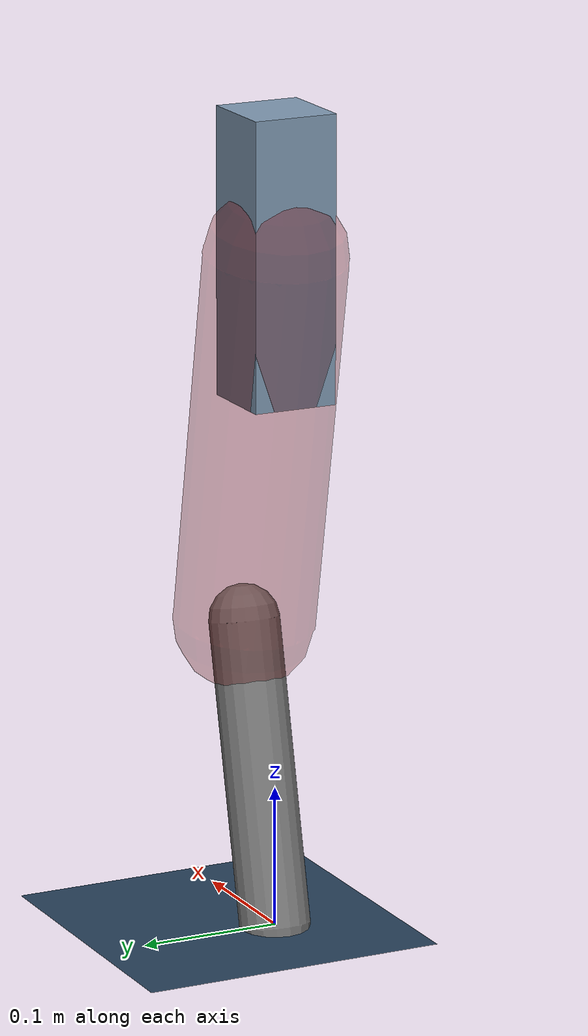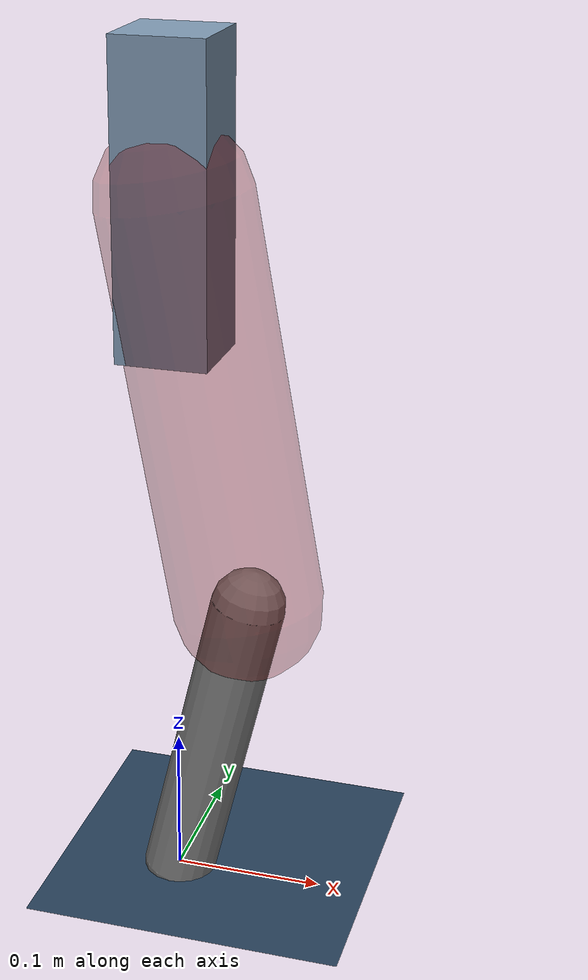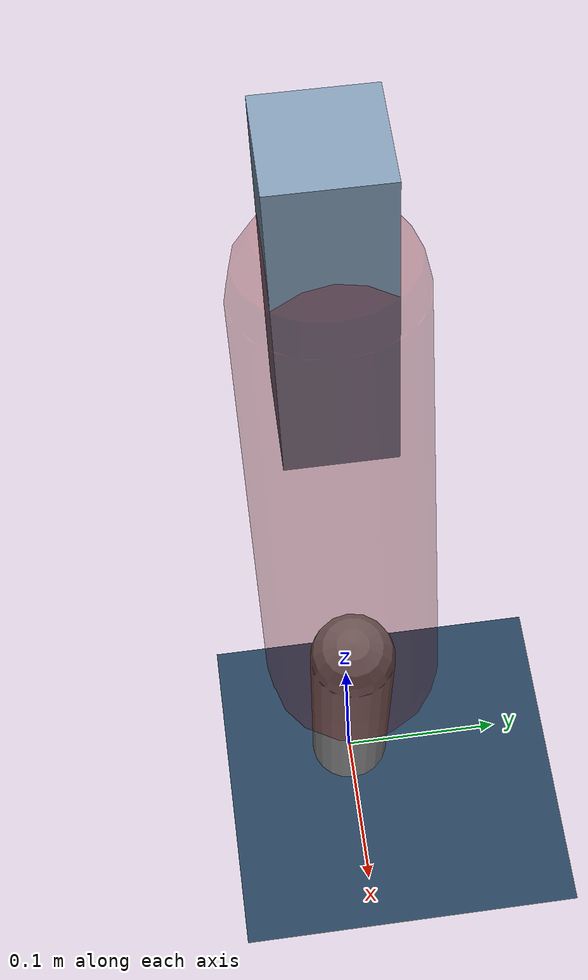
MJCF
<mujoco model="Hopper2D">
	<compiler inertiafromgeom="true" angle="radian" />
	<option timestep="0.001" integrator="implicit" cone="elliptic" solver="Newton" tolerance="1e-10" />

	<default>
		<geom contype="1" conaffinity="1" condim="3" friction="2 0.005 0.0001" solref="0.005 1" />
		<joint limited="true" damping="0.1" />
	</default>

	<asset>
		<texture name="skybox" type="skybox" builtin="gradient" rgb1=".4 .6 .8" rgb2="0 0 0" width="800" height="800" />
		<texture name="grid" type="2d" builtin="checker" rgb1=".1 .2 .3" rgb2=".2 .3 .4" width="300" height="300" mark="edge" markrgb=".2 .3 .4" />
		<material name="ground" texture="grid" texrepeat="1 1" texuniform="true" reflectance="0.1" />
		<material name="leg" rgba="0.5 0.6 0.7 1" />
	</asset>

	<worldbody>

		<geom name="floor" type="plane" size="5 5 0.25" material="ground" />

		<light directional="false" diffuse="0.8 0.8 0.8" specular="0.3 0.3 0.3" pos="0 0 2" dir="0 0 -1" />
		<light mode="targetbodycom" target="base" directional="false" diffuse="0.8 0.8 0.8" specular="0.3 0.3 0.3" pos="0 0 2" dir="0 0 -1" />

		<camera name="fixed" pos="0 -2 1" xyaxes="1 0 0 0 0 1" />
		<camera name="tracking" mode="trackcom" pos="0 -3 1" />

		<body name="root" pos="0 0 0.4771269358507484">
			<joint name="slide_x" type="slide" axis="1 0 0" range="-100 100" />
			<joint name="slide_z" type="slide" axis="0 0 1" range="0 10" />

			<body name="base" pos="0 0 0">
				<geom name="torso" type="box" size="0.03 0.03 0.1" mass="2.37" material="leg" />

				<body name="link1" pos="0 0 0" euler="0 1.3911858574744624 0">
					<joint type="hinge" axis="0 -1 0" pos="0 0 0" name="hinge1" limited="true" range="-3.14 3.14" stiffness="0" damping="0.1" />
					<geom name="thigh" type="capsule" fromto="0 0 0 0.27276764205922055 0 0" size="0.05" rgba="0.5 0 0 0.3" mass="0.9159726335598954" />

					<body name="link2" pos="0.27276764205922055 0 0" euler="0 0.4089389596135392 0">
						<joint type="hinge" axis="0 -1 0" pos="0 0 0" name="hinge2" limited="true" range="-3.14 3.14" stiffness="0" damping="0.1" />
						<geom name="shank" type="capsule" fromto="0 0 0 0.21435929379152785 0 0" size="0.025" mass="0.41298743503322227" />

					</body>
				</body>
			</body>
		</body>
	</worldbody>

	<actuator>
		<motor name="torque1" joint="hinge1" ctrlrange="-105.7046466902716 105.7046466902716" ctrllimited="true" gear="1" />
		<motor name="torque2" joint="hinge2" ctrlrange="-49.103804809468386 49.103804809468386" ctrllimited="true" gear="1" />
	</actuator>
</mujoco>
